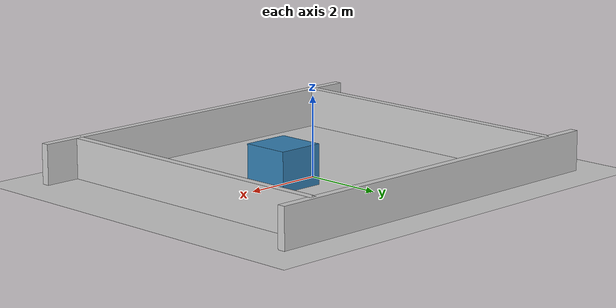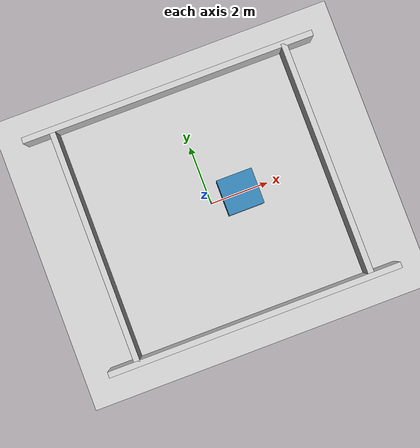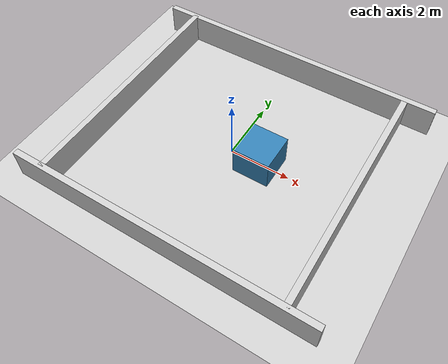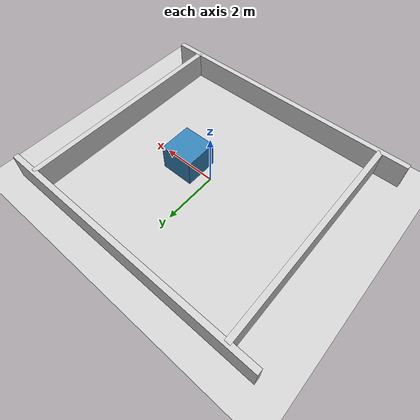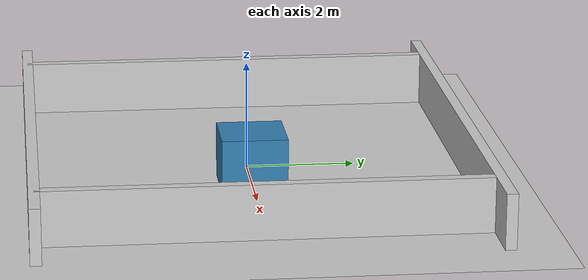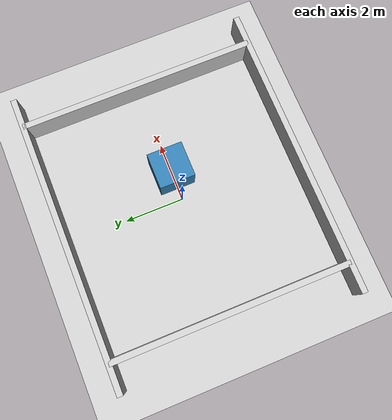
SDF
<?xml version="1.0" ?>
<sdf version="1.6">
  <world name="test_track">
    <include>
      <uri>model://ground_plane</uri>
    </include>
    <include>
      <uri>model://sun</uri>
    </include>

    <physics type="ode">
      <real_time_update_rate>1000</real_time_update_rate>
      <max_step_size>0.001</max_step_size>
    </physics>

    <model name="north_wall">
      <static>true</static>
      <link name="link">
        <pose>0 4 0.5 0 0 0</pose>
        <collision name="collision">
          <geometry>
            <box>
              <size>10 0.2 1</size>
            </box>
          </geometry>
        </collision>
        <visual name="visual">
          <geometry>
            <box>
              <size>10 0.2 1</size>
            </box>
          </geometry>
          <material>
            <ambient>0.8 0.8 0.8 1</ambient>
            <diffuse>0.8 0.8 0.8 1</diffuse>
          </material>
        </visual>
      </link>
    </model>

    <model name="south_wall">
      <static>true</static>
      <link name="link">
        <pose>0 -4 0.5 0 0 0</pose>
        <collision name="collision">
          <geometry>
            <box>
              <size>10 0.2 1</size>
            </box>
          </geometry>
        </collision>
        <visual name="visual">
          <geometry>
            <box>
              <size>10 0.2 1</size>
            </box>
          </geometry>
          <material>
            <ambient>0.8 0.8 0.8 1</ambient>
            <diffuse>0.8 0.8 0.8 1</diffuse>
          </material>
        </visual>
      </link>
    </model>

    <model name="east_wall">
      <static>true</static>
      <link name="link">
        <pose>4 0 0.5 0 0 0</pose>
        <collision name="collision">
          <geometry>
            <box>
              <size>0.2 8 1</size>
            </box>
          </geometry>
        </collision>
        <visual name="visual">
          <geometry>
            <box>
              <size>0.2 8 1</size>
            </box>
          </geometry>
          <material>
            <ambient>0.8 0.8 0.8 1</ambient>
            <diffuse>0.8 0.8 0.8 1</diffuse>
          </material>
        </visual>
      </link>
    </model>

    <model name="west_wall">
      <static>true</static>
      <link name="link">
        <pose>-4 0 0.5 0 0 0</pose>
        <collision name="collision">
          <geometry>
            <box>
              <size>0.2 8 1</size>
            </box>
          </geometry>
        </collision>
        <visual name="visual">
          <geometry>
            <box>
              <size>0.2 8 1</size>
            </box>
          </geometry>
          <material>
            <ambient>0.8 0.8 0.8 1</ambient>
            <diffuse>0.8 0.8 0.8 1</diffuse>
          </material>
        </visual>
      </link>
    </model>

    <model name="center_block">
      <static>true</static>
      <link name="link">
        <pose>1.0 0.0 0.5 0 0 0</pose>
        <collision name="collision">
          <geometry>
            <box>
              <size>1.2 1.2 1</size>
            </box>
          </geometry>
        </collision>
        <visual name="visual">
          <geometry>
            <box>
              <size>1.2 1.2 1</size>
            </box>
          </geometry>
          <material>
            <ambient>0.2 0.5 0.7 1</ambient>
            <diffuse>0.2 0.5 0.7 1</diffuse>
          </material>
        </visual>
      </link>
    </model>
  </world>
</sdf>
